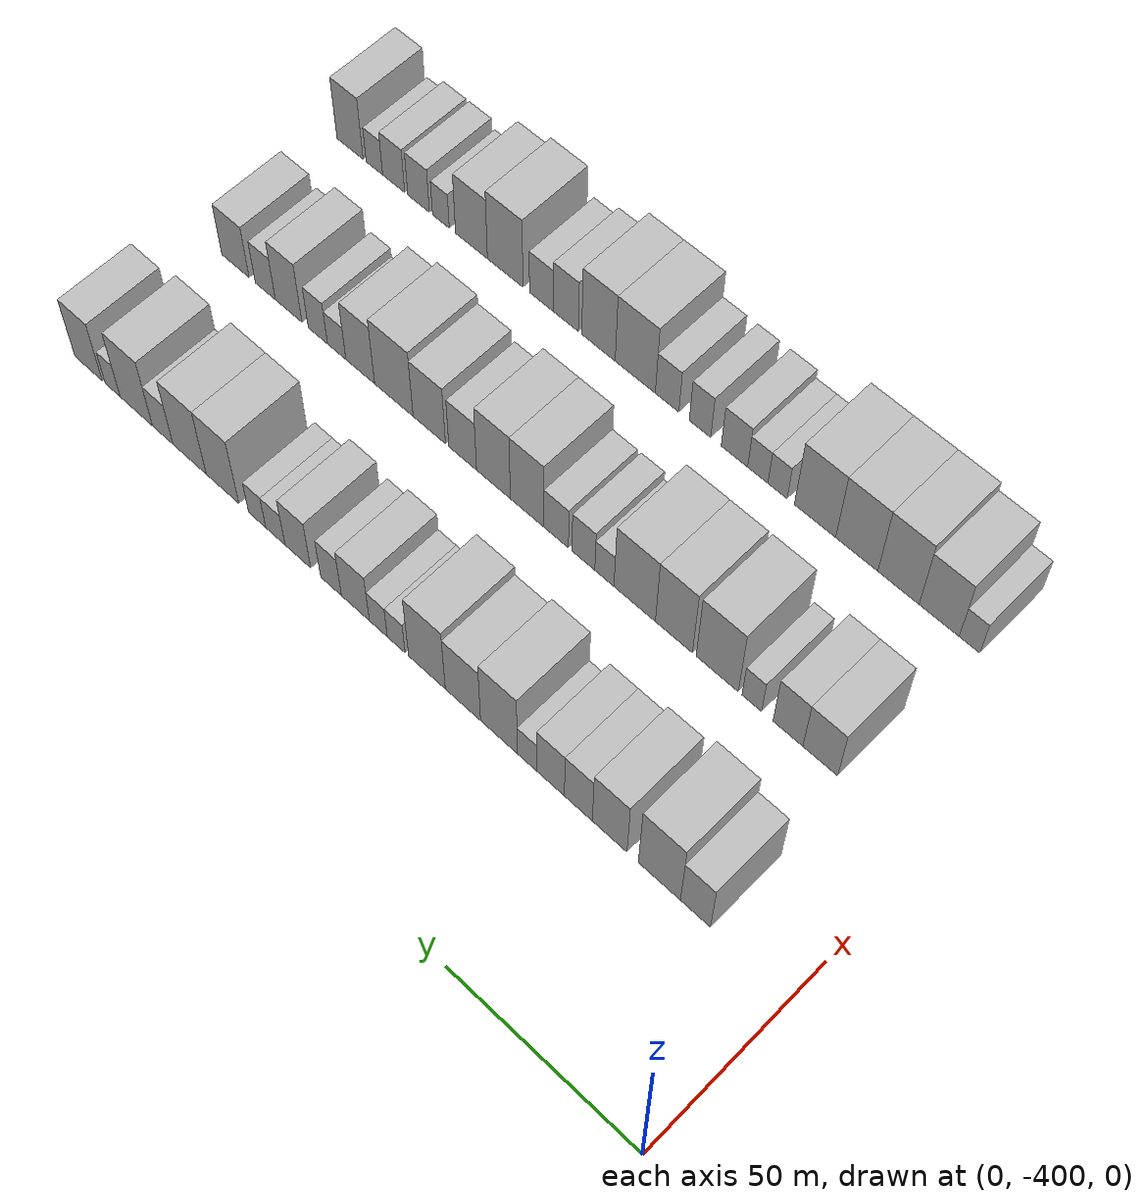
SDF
<sdf version="1.6">
 <world name="default">
  <model name="building_1">
   <static>1</static>
   <pose>50.0000 -376.1810 0 0.000000 0.000000 0.000000</pose>
   <link name="link">
    <pose>0 0 9.00 0 0 0</pose>
    <collision name="collision"><geometry><box><size>20.0000 7.6380 18.0000</size></box></geometry></collision>
    <visual name="visual">
     <cast_shadows>0</cast_shadows>
     <geometry><box><size>20.0000 7.6380 18.0000</size></box></geometry>
     <material>
      <script>
       <uri>model://HANNAS_wall/materials/scripts</uri>
       <uri>model://HANNAS_wall/materials/textures</uri>
       <name>vrc/HANNAS_wall</name>
      </script>
     </material>
    </visual>
   </link>
  </model>
  <model name="building_2">
   <static>1</static>
   <pose>50.0000 -366.9421 0 0.000000 0.000000 0.000000</pose>
   <link name="link">
    <pose>0 0 12.00 0 0 0</pose>
    <collision name="collision"><geometry><box><size>20.0000 10.8399 24.0000</size></box></geometry></collision>
    <visual name="visual">
     <cast_shadows>0</cast_shadows>
     <geometry><box><size>20.0000 10.8399 24.0000</size></box></geometry>
     <material>
      <script>
       <uri>model://HANNAS_wall/materials/scripts</uri>
       <uri>model://HANNAS_wall/materials/textures</uri>
       <name>vrc/HANNAS_wall</name>
      </script>
     </material>
    </visual>
   </link>
  </model>
  <model name="building_3">
   <static>1</static>
   <pose>50.0000 -353.9611 0 0.000000 0.000000 0.000000</pose>
   <link name="link">
    <pose>0 0 10.50 0 0 0</pose>
    <collision name="collision"><geometry><box><size>20.0000 9.1221 21.0000</size></box></geometry></collision>
    <visual name="visual">
     <cast_shadows>0</cast_shadows>
     <geometry><box><size>20.0000 9.1221 21.0000</size></box></geometry>
     <material>
      <script>
       <uri>model://HANNAS_wall/materials/scripts</uri>
       <uri>model://HANNAS_wall/materials/textures</uri>
       <name>vrc/HANNAS_wall</name>
      </script>
     </material>
    </visual>
   </link>
  </model>
  <model name="building_4">
   <static>1</static>
   <pose>50.0000 -345.6792 0 0.000000 0.000000 0.000000</pose>
   <link name="link">
    <pose>0 0 9.00 0 0 0</pose>
    <collision name="collision"><geometry><box><size>20.0000 7.4416 18.0000</size></box></geometry></collision>
    <visual name="visual">
     <cast_shadows>0</cast_shadows>
     <geometry><box><size>20.0000 7.4416 18.0000</size></box></geometry>
     <material>
      <script>
       <uri>model://HANNAS_wall/materials/scripts</uri>
       <uri>model://HANNAS_wall/materials/textures</uri>
       <name>vrc/HANNAS_wall</name>
      </script>
     </material>
    </visual>
   </link>
  </model>
  <model name="building_5">
   <static>1</static>
   <pose>50.0000 -338.2252 0 0.000000 0.000000 0.000000</pose>
   <link name="link">
    <pose>0 0 9.00 0 0 0</pose>
    <collision name="collision"><geometry><box><size>20.0000 7.4664 18.0000</size></box></geometry></collision>
    <visual name="visual">
     <cast_shadows>0</cast_shadows>
     <geometry><box><size>20.0000 7.4664 18.0000</size></box></geometry>
     <material>
      <script>
       <uri>model://HANNAS_wall/materials/scripts</uri>
       <uri>model://HANNAS_wall/materials/textures</uri>
       <name>vrc/HANNAS_wall</name>
      </script>
     </material>
    </visual>
   </link>
  </model>
  <model name="building_6">
   <static>1</static>
   <pose>50.0000 -331.8795 0 0.000000 0.000000 0.000000</pose>
   <link name="link">
    <pose>0 0 6.00 0 0 0</pose>
    <collision name="collision"><geometry><box><size>20.0000 5.2251 12.0000</size></box></geometry></collision>
    <visual name="visual">
     <cast_shadows>0</cast_shadows>
     <geometry><box><size>20.0000 5.2251 12.0000</size></box></geometry>
     <material>
      <script>
       <uri>model://HANNAS_wall/materials/scripts</uri>
       <uri>model://HANNAS_wall/materials/textures</uri>
       <name>vrc/HANNAS_wall</name>
      </script>
     </material>
    </visual>
   </link>
  </model>
  <model name="building_7">
   <static>1</static>
   <pose>50.0000 -324.1723 0 0.000000 0.000000 0.000000</pose>
   <link name="link">
    <pose>0 0 12.00 0 0 0</pose>
    <collision name="collision"><geometry><box><size>20.0000 10.1895 24.0000</size></box></geometry></collision>
    <visual name="visual">
     <cast_shadows>0</cast_shadows>
     <geometry><box><size>20.0000 10.1895 24.0000</size></box></geometry>
     <material>
      <script>
       <uri>model://HANNAS_wall/materials/scripts</uri>
       <uri>model://HANNAS_wall/materials/textures</uri>
       <name>vrc/HANNAS_wall</name>
      </script>
     </material>
    </visual>
   </link>
  </model>
  <model name="building_8">
   <static>1</static>
   <pose>50.0000 -314.1347 0 0.000000 0.000000 0.000000</pose>
   <link name="link">
    <pose>0 0 10.50 0 0 0</pose>
    <collision name="collision"><geometry><box><size>20.0000 9.8857 21.0000</size></box></geometry></collision>
    <visual name="visual">
     <cast_shadows>0</cast_shadows>
     <geometry><box><size>20.0000 9.8857 21.0000</size></box></geometry>
     <material>
      <script>
       <uri>model://HANNAS_wall/materials/scripts</uri>
       <uri>model://HANNAS_wall/materials/textures</uri>
       <name>vrc/HANNAS_wall</name>
      </script>
     </material>
    </visual>
   </link>
  </model>
  <model name="building_9">
   <static>1</static>
   <pose>50.0000 -303.9926 0 0.000000 0.000000 0.000000</pose>
   <link name="link">
    <pose>0 0 12.00 0 0 0</pose>
    <collision name="collision"><geometry><box><size>20.0000 10.3984 24.0000</size></box></geometry></collision>
    <visual name="visual">
     <cast_shadows>0</cast_shadows>
     <geometry><box><size>20.0000 10.3984 24.0000</size></box></geometry>
     <material>
      <script>
       <uri>model://HANNAS_wall/materials/scripts</uri>
       <uri>model://HANNAS_wall/materials/textures</uri>
       <name>vrc/HANNAS_wall</name>
      </script>
     </material>
    </visual>
   </link>
  </model>
  <model name="building_10">
   <static>1</static>
   <pose>50.0000 -295.2278 0 0.000000 0.000000 0.000000</pose>
   <link name="link">
    <pose>0 0 6.00 0 0 0</pose>
    <collision name="collision"><geometry><box><size>20.0000 5.1312 12.0000</size></box></geometry></collision>
    <visual name="visual">
     <cast_shadows>0</cast_shadows>
     <geometry><box><size>20.0000 5.1312 12.0000</size></box></geometry>
     <material>
      <script>
       <uri>model://HANNAS_wall/materials/scripts</uri>
       <uri>model://HANNAS_wall/materials/textures</uri>
       <name>vrc/HANNAS_wall</name>
      </script>
     </material>
    </visual>
   </link>
  </model>
  <model name="building_11">
   <static>1</static>
   <pose>50.0000 -290.0710 0 0.000000 0.000000 0.000000</pose>
   <link name="link">
    <pose>0 0 6.00 0 0 0</pose>
    <collision name="collision"><geometry><box><size>20.0000 5.1823 12.0000</size></box></geometry></collision>
    <visual name="visual">
     <cast_shadows>0</cast_shadows>
     <geometry><box><size>20.0000 5.1823 12.0000</size></box></geometry>
     <material>
      <script>
       <uri>model://HANNAS_wall/materials/scripts</uri>
       <uri>model://HANNAS_wall/materials/textures</uri>
       <name>vrc/HANNAS_wall</name>
      </script>
     </material>
    </visual>
   </link>
  </model>
  <model name="building_12">
   <static>1</static>
   <pose>50.0000 -283.3765 0 0.000000 0.000000 0.000000</pose>
   <link name="link">
    <pose>0 0 9.00 0 0 0</pose>
    <collision name="collision"><geometry><box><size>20.0000 8.2066 18.0000</size></box></geometry></collision>
    <visual name="visual">
     <cast_shadows>0</cast_shadows>
     <geometry><box><size>20.0000 8.2066 18.0000</size></box></geometry>
     <material>
      <script>
       <uri>model://HANNAS_wall/materials/scripts</uri>
       <uri>model://HANNAS_wall/materials/textures</uri>
       <name>vrc/HANNAS_wall</name>
      </script>
     </material>
    </visual>
   </link>
  </model>
  <model name="building_13">
   <static>1</static>
   <pose>50.0000 -276.2098 0 0.000000 0.000000 0.000000</pose>
   <link name="link">
    <pose>0 0 7.50 0 0 0</pose>
    <collision name="collision"><geometry><box><size>20.0000 6.1267 15.0000</size></box></geometry></collision>
    <visual name="visual">
     <cast_shadows>0</cast_shadows>
     <geometry><box><size>20.0000 6.1267 15.0000</size></box></geometry>
     <material>
      <script>
       <uri>model://HANNAS_wall/materials/scripts</uri>
       <uri>model://HANNAS_wall/materials/textures</uri>
       <name>vrc/HANNAS_wall</name>
      </script>
     </material>
    </visual>
   </link>
  </model>
  <model name="building_14">
   <static>1</static>
   <pose>50.0000 -266.2871 0 0.000000 0.000000 0.000000</pose>
   <link name="link">
    <pose>0 0 9.00 0 0 0</pose>
    <collision name="collision"><geometry><box><size>20.0000 7.7186 18.0000</size></box></geometry></collision>
    <visual name="visual">
     <cast_shadows>0</cast_shadows>
     <geometry><box><size>20.0000 7.7186 18.0000</size></box></geometry>
     <material>
      <script>
       <uri>model://HANNAS_wall/materials/scripts</uri>
       <uri>model://HANNAS_wall/materials/textures</uri>
       <name>vrc/HANNAS_wall</name>
      </script>
     </material>
    </visual>
   </link>
  </model>
  <model name="building_15">
   <static>1</static>
   <pose>50.0000 -259.5210 0 0.000000 0.000000 0.000000</pose>
   <link name="link">
    <pose>0 0 6.00 0 0 0</pose>
    <collision name="collision"><geometry><box><size>20.0000 5.8136 12.0000</size></box></geometry></collision>
    <visual name="visual">
     <cast_shadows>0</cast_shadows>
     <geometry><box><size>20.0000 5.8136 12.0000</size></box></geometry>
     <material>
      <script>
       <uri>model://HANNAS_wall/materials/scripts</uri>
       <uri>model://HANNAS_wall/materials/textures</uri>
       <name>vrc/HANNAS_wall</name>
      </script>
     </material>
    </visual>
   </link>
  </model>
  <model name="building_16">
   <static>1</static>
   <pose>50.0000 -253.9832 0 0.000000 0.000000 0.000000</pose>
   <link name="link">
    <pose>0 0 6.00 0 0 0</pose>
    <collision name="collision"><geometry><box><size>20.0000 5.2621 12.0000</size></box></geometry></collision>
    <visual name="visual">
     <cast_shadows>0</cast_shadows>
     <geometry><box><size>20.0000 5.2621 12.0000</size></box></geometry>
     <material>
      <script>
       <uri>model://HANNAS_wall/materials/scripts</uri>
       <uri>model://HANNAS_wall/materials/textures</uri>
       <name>vrc/HANNAS_wall</name>
      </script>
     </material>
    </visual>
   </link>
  </model>
  <model name="building_17">
   <static>1</static>
   <pose>50.0000 -243.2892 0 0.000000 0.000000 0.000000</pose>
   <link name="link">
    <pose>0 0 12.00 0 0 0</pose>
    <collision name="collision"><geometry><box><size>20.0000 10.1258 24.0000</size></box></geometry></collision>
    <visual name="visual">
     <cast_shadows>0</cast_shadows>
     <geometry><box><size>20.0000 10.1258 24.0000</size></box></geometry>
     <material>
      <script>
       <uri>model://HANNAS_wall/materials/scripts</uri>
       <uri>model://HANNAS_wall/materials/textures</uri>
       <name>vrc/HANNAS_wall</name>
      </script>
     </material>
    </visual>
   </link>
  </model>
  <model name="building_18">
   <static>1</static>
   <pose>50.0000 -232.9843 0 0.000000 0.000000 0.000000</pose>
   <link name="link">
    <pose>0 0 12.00 0 0 0</pose>
    <collision name="collision"><geometry><box><size>20.0000 10.4840 24.0000</size></box></geometry></collision>
    <visual name="visual">
     <cast_shadows>0</cast_shadows>
     <geometry><box><size>20.0000 10.4840 24.0000</size></box></geometry>
     <material>
      <script>
       <uri>model://HANNAS_wall/materials/scripts</uri>
       <uri>model://HANNAS_wall/materials/textures</uri>
       <name>vrc/HANNAS_wall</name>
      </script>
     </material>
    </visual>
   </link>
  </model>
  <model name="building_19">
   <static>1</static>
   <pose>50.0000 -224.4705 0 0.000000 0.000000 0.000000</pose>
   <link name="link">
    <pose>0 0 7.50 0 0 0</pose>
    <collision name="collision"><geometry><box><size>20.0000 6.5437 15.0000</size></box></geometry></collision>
    <visual name="visual">
     <cast_shadows>0</cast_shadows>
     <geometry><box><size>20.0000 6.5437 15.0000</size></box></geometry>
     <material>
      <script>
       <uri>model://HANNAS_wall/materials/scripts</uri>
       <uri>model://HANNAS_wall/materials/textures</uri>
       <name>vrc/HANNAS_wall</name>
      </script>
     </material>
    </visual>
   </link>
  </model>
  <model name="building_20">
   <static>1</static>
   <pose>50.0000 -215.9968 0 0.000000 0.000000 0.000000</pose>
   <link name="link">
    <pose>0 0 12.00 0 0 0</pose>
    <collision name="collision"><geometry><box><size>20.0000 10.4036 24.0000</size></box></geometry></collision>
    <visual name="visual">
     <cast_shadows>0</cast_shadows>
     <geometry><box><size>20.0000 10.4036 24.0000</size></box></geometry>
     <material>
      <script>
       <uri>model://HANNAS_wall/materials/scripts</uri>
       <uri>model://HANNAS_wall/materials/textures</uri>
       <name>vrc/HANNAS_wall</name>
      </script>
     </material>
    </visual>
   </link>
  </model>
  <model name="building_21">
   <static>1</static>
   <pose>50.0000 -208.3638 0 0.000000 0.000000 0.000000</pose>
   <link name="link">
    <pose>0 0 6.00 0 0 0</pose>
    <collision name="collision"><geometry><box><size>20.0000 4.8625 12.0000</size></box></geometry></collision>
    <visual name="visual">
     <cast_shadows>0</cast_shadows>
     <geometry><box><size>20.0000 4.8625 12.0000</size></box></geometry>
     <material>
      <script>
       <uri>model://HANNAS_wall/materials/scripts</uri>
       <uri>model://HANNAS_wall/materials/textures</uri>
       <name>vrc/HANNAS_wall</name>
      </script>
     </material>
    </visual>
   </link>
  </model>
  <model name="building_22">
   <static>1</static>
   <pose>50.0000 -200.4402 0 0.000000 0.000000 0.000000</pose>
   <link name="link">
    <pose>0 0 10.50 0 0 0</pose>
    <collision name="collision"><geometry><box><size>20.0000 8.9846 21.0000</size></box></geometry></collision>
    <visual name="visual">
     <cast_shadows>0</cast_shadows>
     <geometry><box><size>20.0000 8.9846 21.0000</size></box></geometry>
     <material>
      <script>
       <uri>model://HANNAS_wall/materials/scripts</uri>
       <uri>model://HANNAS_wall/materials/textures</uri>
       <name>vrc/HANNAS_wall</name>
      </script>
     </material>
    </visual>
   </link>
  </model>
  <model name="building_89">
   <static>1</static>
   <pose>90.0000 -372.5246 0 0.000000 0.000000 0.000000</pose>
   <link name="link">
    <pose>0 0 9.00 0 0 0</pose>
    <collision name="collision"><geometry><box><size>20.0000 8.9508 18.0000</size></box></geometry></collision>
    <visual name="visual">
     <cast_shadows>0</cast_shadows>
     <geometry><box><size>20.0000 8.9508 18.0000</size></box></geometry>
     <material>
      <script>
       <uri>model://HANNAS_wall/materials/scripts</uri>
       <uri>model://HANNAS_wall/materials/textures</uri>
       <name>vrc/HANNAS_wall</name>
      </script>
     </material>
    </visual>
   </link>
  </model>
  <model name="building_90">
   <static>1</static>
   <pose>90.0000 -364.1748 0 0.000000 0.000000 0.000000</pose>
   <link name="link">
    <pose>0 0 9.00 0 0 0</pose>
    <collision name="collision"><geometry><box><size>20.0000 7.7489 18.0000</size></box></geometry></collision>
    <visual name="visual">
     <cast_shadows>0</cast_shadows>
     <geometry><box><size>20.0000 7.7489 18.0000</size></box></geometry>
     <material>
      <script>
       <uri>model://HANNAS_wall/materials/scripts</uri>
       <uri>model://HANNAS_wall/materials/textures</uri>
       <name>vrc/HANNAS_wall</name>
      </script>
     </material>
    </visual>
   </link>
  </model>
  <model name="building_91">
   <static>1</static>
   <pose>90.0000 -354.7128 0 0.000000 0.000000 0.000000</pose>
   <link name="link">
    <pose>0 0 6.00 0 0 0</pose>
    <collision name="collision"><geometry><box><size>20.0000 5.1751 12.0000</size></box></geometry></collision>
    <visual name="visual">
     <cast_shadows>0</cast_shadows>
     <geometry><box><size>20.0000 5.1751 12.0000</size></box></geometry>
     <material>
      <script>
       <uri>model://HANNAS_wall/materials/scripts</uri>
       <uri>model://HANNAS_wall/materials/textures</uri>
       <name>vrc/HANNAS_wall</name>
      </script>
     </material>
    </visual>
   </link>
  </model>
  <model name="building_92">
   <static>1</static>
   <pose>90.0000 -345.4893 0 0.000000 0.000000 0.000000</pose>
   <link name="link">
    <pose>0 0 12.00 0 0 0</pose>
    <collision name="collision"><geometry><box><size>20.0000 11.2720 24.0000</size></box></geometry></collision>
    <visual name="visual">
     <cast_shadows>0</cast_shadows>
     <geometry><box><size>20.0000 11.2720 24.0000</size></box></geometry>
     <material>
      <script>
       <uri>model://HANNAS_wall/materials/scripts</uri>
       <uri>model://HANNAS_wall/materials/textures</uri>
       <name>vrc/HANNAS_wall</name>
      </script>
     </material>
    </visual>
   </link>
  </model>
  <model name="building_93">
   <static>1</static>
   <pose>90.0000 -333.8002 0 0.000000 0.000000 0.000000</pose>
   <link name="link">
    <pose>0 0 12.00 0 0 0</pose>
    <collision name="collision"><geometry><box><size>20.0000 10.1063 24.0000</size></box></geometry></collision>
    <visual name="visual">
     <cast_shadows>0</cast_shadows>
     <geometry><box><size>20.0000 10.1063 24.0000</size></box></geometry>
     <material>
      <script>
       <uri>model://HANNAS_wall/materials/scripts</uri>
       <uri>model://HANNAS_wall/materials/textures</uri>
       <name>vrc/HANNAS_wall</name>
      </script>
     </material>
    </visual>
   </link>
  </model>
  <model name="building_94">
   <static>1</static>
   <pose>90.0000 -323.0171 0 0.000000 0.000000 0.000000</pose>
   <link name="link">
    <pose>0 0 12.00 0 0 0</pose>
    <collision name="collision"><geometry><box><size>20.0000 11.4598 24.0000</size></box></geometry></collision>
    <visual name="visual">
     <cast_shadows>0</cast_shadows>
     <geometry><box><size>20.0000 11.4598 24.0000</size></box></geometry>
     <material>
      <script>
       <uri>model://HANNAS_wall/materials/scripts</uri>
       <uri>model://HANNAS_wall/materials/textures</uri>
       <name>vrc/HANNAS_wall</name>
      </script>
     </material>
    </visual>
   </link>
  </model>
  <model name="building_95">
   <static>1</static>
   <pose>90.0000 -314.6124 0 0.000000 0.000000 0.000000</pose>
   <link name="link">
    <pose>0 0 6.00 0 0 0</pose>
    <collision name="collision"><geometry><box><size>20.0000 5.3496 12.0000</size></box></geometry></collision>
    <visual name="visual">
     <cast_shadows>0</cast_shadows>
     <geometry><box><size>20.0000 5.3496 12.0000</size></box></geometry>
     <material>
      <script>
       <uri>model://HANNAS_wall/materials/scripts</uri>
       <uri>model://HANNAS_wall/materials/textures</uri>
       <name>vrc/HANNAS_wall</name>
      </script>
     </material>
    </visual>
   </link>
  </model>
  <model name="building_96">
   <static>1</static>
   <pose>90.0000 -308.6990 0 0.000000 0.000000 0.000000</pose>
   <link name="link">
    <pose>0 0 7.50 0 0 0</pose>
    <collision name="collision"><geometry><box><size>20.0000 6.4773 15.0000</size></box></geometry></collision>
    <visual name="visual">
     <cast_shadows>0</cast_shadows>
     <geometry><box><size>20.0000 6.4773 15.0000</size></box></geometry>
     <material>
      <script>
       <uri>model://HANNAS_wall/materials/scripts</uri>
       <uri>model://HANNAS_wall/materials/textures</uri>
       <name>vrc/HANNAS_wall</name>
      </script>
     </material>
    </visual>
   </link>
  </model>
  <model name="building_97">
   <static>1</static>
   <pose>90.0000 -300.9830 0 0.000000 0.000000 0.000000</pose>
   <link name="link">
    <pose>0 0 7.50 0 0 0</pose>
    <collision name="collision"><geometry><box><size>20.0000 6.9546 15.0000</size></box></geometry></collision>
    <visual name="visual">
     <cast_shadows>0</cast_shadows>
     <geometry><box><size>20.0000 6.9546 15.0000</size></box></geometry>
     <material>
      <script>
       <uri>model://HANNAS_wall/materials/scripts</uri>
       <uri>model://HANNAS_wall/materials/textures</uri>
       <name>vrc/HANNAS_wall</name>
      </script>
     </material>
    </visual>
   </link>
  </model>
  <model name="building_98">
   <static>1</static>
   <pose>90.0000 -292.6446 0 0.000000 0.000000 0.000000</pose>
   <link name="link">
    <pose>0 0 12.00 0 0 0</pose>
    <collision name="collision"><geometry><box><size>20.0000 9.7221 24.0000</size></box></geometry></collision>
    <visual name="visual">
     <cast_shadows>0</cast_shadows>
     <geometry><box><size>20.0000 9.7221 24.0000</size></box></geometry>
     <material>
      <script>
       <uri>model://HANNAS_wall/materials/scripts</uri>
       <uri>model://HANNAS_wall/materials/textures</uri>
       <name>vrc/HANNAS_wall</name>
      </script>
     </material>
    </visual>
   </link>
  </model>
  <model name="building_99">
   <static>1</static>
   <pose>90.0000 -282.8188 0 0.000000 0.000000 0.000000</pose>
   <link name="link">
    <pose>0 0 12.00 0 0 0</pose>
    <collision name="collision"><geometry><box><size>20.0000 9.9295 24.0000</size></box></geometry></collision>
    <visual name="visual">
     <cast_shadows>0</cast_shadows>
     <geometry><box><size>20.0000 9.9295 24.0000</size></box></geometry>
     <material>
      <script>
       <uri>model://HANNAS_wall/materials/scripts</uri>
       <uri>model://HANNAS_wall/materials/textures</uri>
       <name>vrc/HANNAS_wall</name>
      </script>
     </material>
    </visual>
   </link>
  </model>
  <model name="building_100">
   <static>1</static>
   <pose>90.0000 -273.7413 0 0.000000 0.000000 0.000000</pose>
   <link name="link">
    <pose>0 0 9.00 0 0 0</pose>
    <collision name="collision"><geometry><box><size>20.0000 8.2255 18.0000</size></box></geometry></collision>
    <visual name="visual">
     <cast_shadows>0</cast_shadows>
     <geometry><box><size>20.0000 8.2255 18.0000</size></box></geometry>
     <material>
      <script>
       <uri>model://HANNAS_wall/materials/scripts</uri>
       <uri>model://HANNAS_wall/materials/textures</uri>
       <name>vrc/HANNAS_wall</name>
      </script>
     </material>
    </visual>
   </link>
  </model>
  <model name="building_101">
   <static>1</static>
   <pose>90.0000 -263.7526 0 0.000000 0.000000 0.000000</pose>
   <link name="link">
    <pose>0 0 10.50 0 0 0</pose>
    <collision name="collision"><geometry><box><size>20.0000 9.7519 21.0000</size></box></geometry></collision>
    <visual name="visual">
     <cast_shadows>0</cast_shadows>
     <geometry><box><size>20.0000 9.7519 21.0000</size></box></geometry>
     <material>
      <script>
       <uri>model://HANNAS_wall/materials/scripts</uri>
       <uri>model://HANNAS_wall/materials/textures</uri>
       <name>vrc/HANNAS_wall</name>
      </script>
     </material>
    </visual>
   </link>
  </model>
  <model name="building_102">
   <static>1</static>
   <pose>90.0000 -252.9950 0 0.000000 0.000000 0.000000</pose>
   <link name="link">
    <pose>0 0 12.00 0 0 0</pose>
    <collision name="collision"><geometry><box><size>20.0000 11.7633 24.0000</size></box></geometry></collision>
    <visual name="visual">
     <cast_shadows>0</cast_shadows>
     <geometry><box><size>20.0000 11.7633 24.0000</size></box></geometry>
     <material>
      <script>
       <uri>model://HANNAS_wall/materials/scripts</uri>
       <uri>model://HANNAS_wall/materials/textures</uri>
       <name>vrc/HANNAS_wall</name>
      </script>
     </material>
    </visual>
   </link>
  </model>
  <model name="building_103">
   <static>1</static>
   <pose>90.0000 -242.6489 0 0.000000 0.000000 0.000000</pose>
   <link name="link">
    <pose>0 0 10.50 0 0 0</pose>
    <collision name="collision"><geometry><box><size>20.0000 8.9288 21.0000</size></box></geometry></collision>
    <visual name="visual">
     <cast_shadows>0</cast_shadows>
     <geometry><box><size>20.0000 8.9288 21.0000</size></box></geometry>
     <material>
      <script>
       <uri>model://HANNAS_wall/materials/scripts</uri>
       <uri>model://HANNAS_wall/materials/textures</uri>
       <name>vrc/HANNAS_wall</name>
      </script>
     </material>
    </visual>
   </link>
  </model>
  <model name="building_104">
   <static>1</static>
   <pose>90.0000 -235.3059 0 0.000000 0.000000 0.000000</pose>
   <link name="link">
    <pose>0 0 6.00 0 0 0</pose>
    <collision name="collision"><geometry><box><size>20.0000 5.7574 12.0000</size></box></geometry></collision>
    <visual name="visual">
     <cast_shadows>0</cast_shadows>
     <geometry><box><size>20.0000 5.7574 12.0000</size></box></geometry>
     <material>
      <script>
       <uri>model://HANNAS_wall/materials/scripts</uri>
       <uri>model://HANNAS_wall/materials/textures</uri>
       <name>vrc/HANNAS_wall</name>
      </script>
     </material>
    </visual>
   </link>
  </model>
  <model name="building_105">
   <static>1</static>
   <pose>90.0000 -229.3950 0 0.000000 0.000000 0.000000</pose>
   <link name="link">
    <pose>0 0 7.50 0 0 0</pose>
    <collision name="collision"><geometry><box><size>20.0000 6.0644 15.0000</size></box></geometry></collision>
    <visual name="visual">
     <cast_shadows>0</cast_shadows>
     <geometry><box><size>20.0000 6.0644 15.0000</size></box></geometry>
     <material>
      <script>
       <uri>model://HANNAS_wall/materials/scripts</uri>
       <uri>model://HANNAS_wall/materials/textures</uri>
       <name>vrc/HANNAS_wall</name>
      </script>
     </material>
    </visual>
   </link>
  </model>
  <model name="building_106">
   <static>1</static>
   <pose>90.0000 -220.1025 0 0.000000 0.000000 0.000000</pose>
   <link name="link">
    <pose>0 0 10.50 0 0 0</pose>
    <collision name="collision"><geometry><box><size>20.0000 8.5206 21.0000</size></box></geometry></collision>
    <visual name="visual">
     <cast_shadows>0</cast_shadows>
     <geometry><box><size>20.0000 8.5206 21.0000</size></box></geometry>
     <material>
      <script>
       <uri>model://HANNAS_wall/materials/scripts</uri>
       <uri>model://HANNAS_wall/materials/textures</uri>
       <name>vrc/HANNAS_wall</name>
      </script>
     </material>
    </visual>
   </link>
  </model>
  <model name="building_107">
   <static>1</static>
   <pose>90.0000 -212.5956 0 0.000000 0.000000 0.000000</pose>
   <link name="link">
    <pose>0 0 7.50 0 0 0</pose>
    <collision name="collision"><geometry><box><size>20.0000 6.4931 15.0000</size></box></geometry></collision>
    <visual name="visual">
     <cast_shadows>0</cast_shadows>
     <geometry><box><size>20.0000 6.4931 15.0000</size></box></geometry>
     <material>
      <script>
       <uri>model://HANNAS_wall/materials/scripts</uri>
       <uri>model://HANNAS_wall/materials/textures</uri>
       <name>vrc/HANNAS_wall</name>
      </script>
     </material>
    </visual>
   </link>
  </model>
  <model name="building_108">
   <static>1</static>
   <pose>90.0000 -202.8945 0 0.000000 0.000000 0.000000</pose>
   <link name="link">
    <pose>0 0 9.00 0 0 0</pose>
    <collision name="collision"><geometry><box><size>20.0000 8.9092 18.0000</size></box></geometry></collision>
    <visual name="visual">
     <cast_shadows>0</cast_shadows>
     <geometry><box><size>20.0000 8.9092 18.0000</size></box></geometry>
     <material>
      <script>
       <uri>model://HANNAS_wall/materials/scripts</uri>
       <uri>model://HANNAS_wall/materials/textures</uri>
       <name>vrc/HANNAS_wall</name>
      </script>
     </material>
    </visual>
   </link>
  </model>
  <model name="building_163">
   <static>1</static>
   <pose>130.0000 -377.3366 0 0.000000 0.000000 0.000000</pose>
   <link name="link">
    <pose>0 0 6.00 0 0 0</pose>
    <collision name="collision"><geometry><box><size>20.0000 5.3269 12.0000</size></box></geometry></collision>
    <visual name="visual">
     <cast_shadows>0</cast_shadows>
     <geometry><box><size>20.0000 5.3269 12.0000</size></box></geometry>
     <material>
      <script>
       <uri>model://HANNAS_wall/materials/scripts</uri>
       <uri>model://HANNAS_wall/materials/textures</uri>
       <name>vrc/HANNAS_wall</name>
      </script>
     </material>
    </visual>
   </link>
  </model>
  <model name="building_164">
   <static>1</static>
   <pose>130.0000 -369.4705 0 0.000000 0.000000 0.000000</pose>
   <link name="link">
    <pose>0 0 10.50 0 0 0</pose>
    <collision name="collision"><geometry><box><size>20.0000 10.4054 21.0000</size></box></geometry></collision>
    <visual name="visual">
     <cast_shadows>0</cast_shadows>
     <geometry><box><size>20.0000 10.4054 21.0000</size></box></geometry>
     <material>
      <script>
       <uri>model://HANNAS_wall/materials/scripts</uri>
       <uri>model://HANNAS_wall/materials/textures</uri>
       <name>vrc/HANNAS_wall</name>
      </script>
     </material>
    </visual>
   </link>
  </model>
  <model name="building_165">
   <static>1</static>
   <pose>130.0000 -358.8238 0 0.000000 0.000000 0.000000</pose>
   <link name="link">
    <pose>0 0 12.00 0 0 0</pose>
    <collision name="collision"><geometry><box><size>20.0000 10.8879 24.0000</size></box></geometry></collision>
    <visual name="visual">
     <cast_shadows>0</cast_shadows>
     <geometry><box><size>20.0000 10.8879 24.0000</size></box></geometry>
     <material>
      <script>
       <uri>model://HANNAS_wall/materials/scripts</uri>
       <uri>model://HANNAS_wall/materials/textures</uri>
       <name>vrc/HANNAS_wall</name>
      </script>
     </material>
    </visual>
   </link>
  </model>
  <model name="building_166">
   <static>1</static>
   <pose>130.0000 -347.7319 0 0.000000 0.000000 0.000000</pose>
   <link name="link">
    <pose>0 0 12.00 0 0 0</pose>
    <collision name="collision"><geometry><box><size>20.0000 11.2960 24.0000</size></box></geometry></collision>
    <visual name="visual">
     <cast_shadows>0</cast_shadows>
     <geometry><box><size>20.0000 11.2960 24.0000</size></box></geometry>
     <material>
      <script>
       <uri>model://HANNAS_wall/materials/scripts</uri>
       <uri>model://HANNAS_wall/materials/textures</uri>
       <name>vrc/HANNAS_wall</name>
      </script>
     </material>
    </visual>
   </link>
  </model>
  <model name="building_167">
   <static>1</static>
   <pose>130.0000 -336.4592 0 0.000000 0.000000 0.000000</pose>
   <link name="link">
    <pose>0 0 12.00 0 0 0</pose>
    <collision name="collision"><geometry><box><size>20.0000 11.2495 24.0000</size></box></geometry></collision>
    <visual name="visual">
     <cast_shadows>0</cast_shadows>
     <geometry><box><size>20.0000 11.2495 24.0000</size></box></geometry>
     <material>
      <script>
       <uri>model://HANNAS_wall/materials/scripts</uri>
       <uri>model://HANNAS_wall/materials/textures</uri>
       <name>vrc/HANNAS_wall</name>
      </script>
     </material>
    </visual>
   </link>
  </model>
  <model name="building_168">
   <static>1</static>
   <pose>130.0000 -326.1755 0 0.000000 0.000000 0.000000</pose>
   <link name="link">
    <pose>0 0 6.00 0 0 0</pose>
    <collision name="collision"><geometry><box><size>20.0000 5.3178 12.0000</size></box></geometry></collision>
    <visual name="visual">
     <cast_shadows>0</cast_shadows>
     <geometry><box><size>20.0000 5.3178 12.0000</size></box></geometry>
     <material>
      <script>
       <uri>model://HANNAS_wall/materials/scripts</uri>
       <uri>model://HANNAS_wall/materials/textures</uri>
       <name>vrc/HANNAS_wall</name>
      </script>
     </material>
    </visual>
   </link>
  </model>
  <model name="building_169">
   <static>1</static>
   <pose>130.0000 -320.6930 0 0.000000 0.000000 0.000000</pose>
   <link name="link">
    <pose>0 0 6.00 0 0 0</pose>
    <collision name="collision"><geometry><box><size>20.0000 5.6472 12.0000</size></box></geometry></collision>
    <visual name="visual">
     <cast_shadows>0</cast_shadows>
     <geometry><box><size>20.0000 5.6472 12.0000</size></box></geometry>
     <material>
      <script>
       <uri>model://HANNAS_wall/materials/scripts</uri>
       <uri>model://HANNAS_wall/materials/textures</uri>
       <name>vrc/HANNAS_wall</name>
      </script>
     </material>
    </visual>
   </link>
  </model>
  <model name="building_170">
   <static>1</static>
   <pose>130.0000 -314.1635 0 0.000000 0.000000 0.000000</pose>
   <link name="link">
    <pose>0 0 7.50 0 0 0</pose>
    <collision name="collision"><geometry><box><size>20.0000 7.4119 15.0000</size></box></geometry></collision>
    <visual name="visual">
     <cast_shadows>0</cast_shadows>
     <geometry><box><size>20.0000 7.4119 15.0000</size></box></geometry>
     <material>
      <script>
       <uri>model://HANNAS_wall/materials/scripts</uri>
       <uri>model://HANNAS_wall/materials/textures</uri>
       <name>vrc/HANNAS_wall</name>
      </script>
     </material>
    </visual>
   </link>
  </model>
  <model name="building_171">
   <static>1</static>
   <pose>130.0000 -304.4133 0 0.000000 0.000000 0.000000</pose>
   <link name="link">
    <pose>0 0 7.50 0 0 0</pose>
    <collision name="collision"><geometry><box><size>20.0000 6.0884 15.0000</size></box></geometry></collision>
    <visual name="visual">
     <cast_shadows>0</cast_shadows>
     <geometry><box><size>20.0000 6.0884 15.0000</size></box></geometry>
     <material>
      <script>
       <uri>model://HANNAS_wall/materials/scripts</uri>
       <uri>model://HANNAS_wall/materials/textures</uri>
       <name>vrc/HANNAS_wall</name>
      </script>
     </material>
    </visual>
   </link>
  </model>
  <model name="building_172">
   <static>1</static>
   <pose>130.0000 -294.9656 0 0.000000 0.000000 0.000000</pose>
   <link name="link">
    <pose>0 0 7.50 0 0 0</pose>
    <collision name="collision"><geometry><box><size>20.0000 6.8070 15.0000</size></box></geometry></collision>
    <visual name="visual">
     <cast_shadows>0</cast_shadows>
     <geometry><box><size>20.0000 6.8070 15.0000</size></box></geometry>
     <material>
      <script>
       <uri>model://HANNAS_wall/materials/scripts</uri>
       <uri>model://HANNAS_wall/materials/textures</uri>
       <name>vrc/HANNAS_wall</name>
      </script>
     </material>
    </visual>
   </link>
  </model>
  <model name="building_173">
   <static>1</static>
   <pose>130.0000 -285.6948 0 0.000000 0.000000 0.000000</pose>
   <link name="link">
    <pose>0 0 12.00 0 0 0</pose>
    <collision name="collision"><geometry><box><size>20.0000 11.7345 24.0000</size></box></geometry></collision>
    <visual name="visual">
     <cast_shadows>0</cast_shadows>
     <geometry><box><size>20.0000 11.7345 24.0000</size></box></geometry>
     <material>
      <script>
       <uri>model://HANNAS_wall/materials/scripts</uri>
       <uri>model://HANNAS_wall/materials/textures</uri>
       <name>vrc/HANNAS_wall</name>
      </script>
     </material>
    </visual>
   </link>
  </model>
  <model name="building_174">
   <static>1</static>
   <pose>130.0000 -274.8539 0 0.000000 0.000000 0.000000</pose>
   <link name="link">
    <pose>0 0 12.00 0 0 0</pose>
    <collision name="collision"><geometry><box><size>20.0000 9.9474 24.0000</size></box></geometry></collision>
    <visual name="visual">
     <cast_shadows>0</cast_shadows>
     <geometry><box><size>20.0000 9.9474 24.0000</size></box></geometry>
     <material>
      <script>
       <uri>model://HANNAS_wall/materials/scripts</uri>
       <uri>model://HANNAS_wall/materials/textures</uri>
       <name>vrc/HANNAS_wall</name>
      </script>
     </material>
    </visual>
   </link>
  </model>
  <model name="building_175">
   <static>1</static>
   <pose>130.0000 -265.1149 0 0.000000 0.000000 0.000000</pose>
   <link name="link">
    <pose>0 0 9.00 0 0 0</pose>
    <collision name="collision"><geometry><box><size>20.0000 7.5306 18.0000</size></box></geometry></collision>
    <visual name="visual">
     <cast_shadows>0</cast_shadows>
     <geometry><box><size>20.0000 7.5306 18.0000</size></box></geometry>
     <material>
      <script>
       <uri>model://HANNAS_wall/materials/scripts</uri>
       <uri>model://HANNAS_wall/materials/textures</uri>
       <name>vrc/HANNAS_wall</name>
      </script>
     </material>
    </visual>
   </link>
  </model>
  <model name="building_176">
   <static>1</static>
   <pose>130.0000 -257.7337 0 0.000000 0.000000 0.000000</pose>
   <link name="link">
    <pose>0 0 7.50 0 0 0</pose>
    <collision name="collision"><geometry><box><size>20.0000 7.2318 15.0000</size></box></geometry></collision>
    <visual name="visual">
     <cast_shadows>0</cast_shadows>
     <geometry><box><size>20.0000 7.2318 15.0000</size></box></geometry>
     <material>
      <script>
       <uri>model://HANNAS_wall/materials/scripts</uri>
       <uri>model://HANNAS_wall/materials/textures</uri>
       <name>vrc/HANNAS_wall</name>
      </script>
     </material>
    </visual>
   </link>
  </model>
  <model name="building_177">
   <static>1</static>
   <pose>130.0000 -246.6339 0 0.000000 0.000000 0.000000</pose>
   <link name="link">
    <pose>0 0 12.00 0 0 0</pose>
    <collision name="collision"><geometry><box><size>20.0000 10.9676 24.0000</size></box></geometry></collision>
    <visual name="visual">
     <cast_shadows>0</cast_shadows>
     <geometry><box><size>20.0000 10.9676 24.0000</size></box></geometry>
     <material>
      <script>
       <uri>model://HANNAS_wall/materials/scripts</uri>
       <uri>model://HANNAS_wall/materials/textures</uri>
       <name>vrc/HANNAS_wall</name>
      </script>
     </material>
    </visual>
   </link>
  </model>
  <model name="building_178">
   <static>1</static>
   <pose>130.0000 -236.1675 0 0.000000 0.000000 0.000000</pose>
   <link name="link">
    <pose>0 0 10.50 0 0 0</pose>
    <collision name="collision"><geometry><box><size>20.0000 9.9652 21.0000</size></box></geometry></collision>
    <visual name="visual">
     <cast_shadows>0</cast_shadows>
     <geometry><box><size>20.0000 9.9652 21.0000</size></box></geometry>
     <material>
      <script>
       <uri>model://HANNAS_wall/materials/scripts</uri>
       <uri>model://HANNAS_wall/materials/textures</uri>
       <name>vrc/HANNAS_wall</name>
      </script>
     </material>
    </visual>
   </link>
  </model>
  <model name="building_179">
   <static>1</static>
   <pose>130.0000 -226.5355 0 0.000000 0.000000 0.000000</pose>
   <link name="link">
    <pose>0 0 6.00 0 0 0</pose>
    <collision name="collision"><geometry><box><size>20.0000 5.2987 12.0000</size></box></geometry></collision>
    <visual name="visual">
     <cast_shadows>0</cast_shadows>
     <geometry><box><size>20.0000 5.2987 12.0000</size></box></geometry>
     <material>
      <script>
       <uri>model://HANNAS_wall/materials/scripts</uri>
       <uri>model://HANNAS_wall/materials/textures</uri>
       <name>vrc/HANNAS_wall</name>
      </script>
     </material>
    </visual>
   </link>
  </model>
  <model name="building_180">
   <static>1</static>
   <pose>130.0000 -219.4355 0 0.000000 0.000000 0.000000</pose>
   <link name="link">
    <pose>0 0 7.50 0 0 0</pose>
    <collision name="collision"><geometry><box><size>20.0000 6.9014 15.0000</size></box></geometry></collision>
    <visual name="visual">
     <cast_shadows>0</cast_shadows>
     <geometry><box><size>20.0000 6.9014 15.0000</size></box></geometry>
     <material>
      <script>
       <uri>model://HANNAS_wall/materials/scripts</uri>
       <uri>model://HANNAS_wall/materials/textures</uri>
       <name>vrc/HANNAS_wall</name>
      </script>
     </material>
    </visual>
   </link>
  </model>
  <model name="building_181">
   <static>1</static>
   <pose>130.0000 -211.4111 0 0.000000 0.000000 0.000000</pose>
   <link name="link">
    <pose>0 0 7.50 0 0 0</pose>
    <collision name="collision"><geometry><box><size>20.0000 7.1473 15.0000</size></box></geometry></collision>
    <visual name="visual">
     <cast_shadows>0</cast_shadows>
     <geometry><box><size>20.0000 7.1473 15.0000</size></box></geometry>
     <material>
      <script>
       <uri>model://HANNAS_wall/materials/scripts</uri>
       <uri>model://HANNAS_wall/materials/textures</uri>
       <name>vrc/HANNAS_wall</name>
      </script>
     </material>
    </visual>
   </link>
  </model>
  <model name="building_182">
   <static>1</static>
   <pose>130.0000 -205.1573 0 0.000000 0.000000 0.000000</pose>
   <link name="link">
    <pose>0 0 6.00 0 0 0</pose>
    <collision name="collision"><geometry><box><size>20.0000 5.3604 12.0000</size></box></geometry></collision>
    <visual name="visual">
     <cast_shadows>0</cast_shadows>
     <geometry><box><size>20.0000 5.3604 12.0000</size></box></geometry>
     <material>
      <script>
       <uri>model://HANNAS_wall/materials/scripts</uri>
       <uri>model://HANNAS_wall/materials/textures</uri>
       <name>vrc/HANNAS_wall</name>
      </script>
     </material>
    </visual>
   </link>
  </model>
  <model name="building_183">
   <static>1</static>
   <pose>130.0000 -197.1897 0 0.000000 0.000000 0.000000</pose>
   <link name="link">
    <pose>0 0 10.50 0 0 0</pose>
    <collision name="collision"><geometry><box><size>20.0000 8.5747 21.0000</size></box></geometry></collision>
    <visual name="visual">
     <cast_shadows>0</cast_shadows>
     <geometry><box><size>20.0000 8.5747 21.0000</size></box></geometry>
     <material>
      <script>
       <uri>model://HANNAS_wall/materials/scripts</uri>
       <uri>model://HANNAS_wall/materials/textures</uri>
       <name>vrc/HANNAS_wall</name>
      </script>
     </material>
    </visual>
   </link>
  </model>
 </world>
</sdf>
